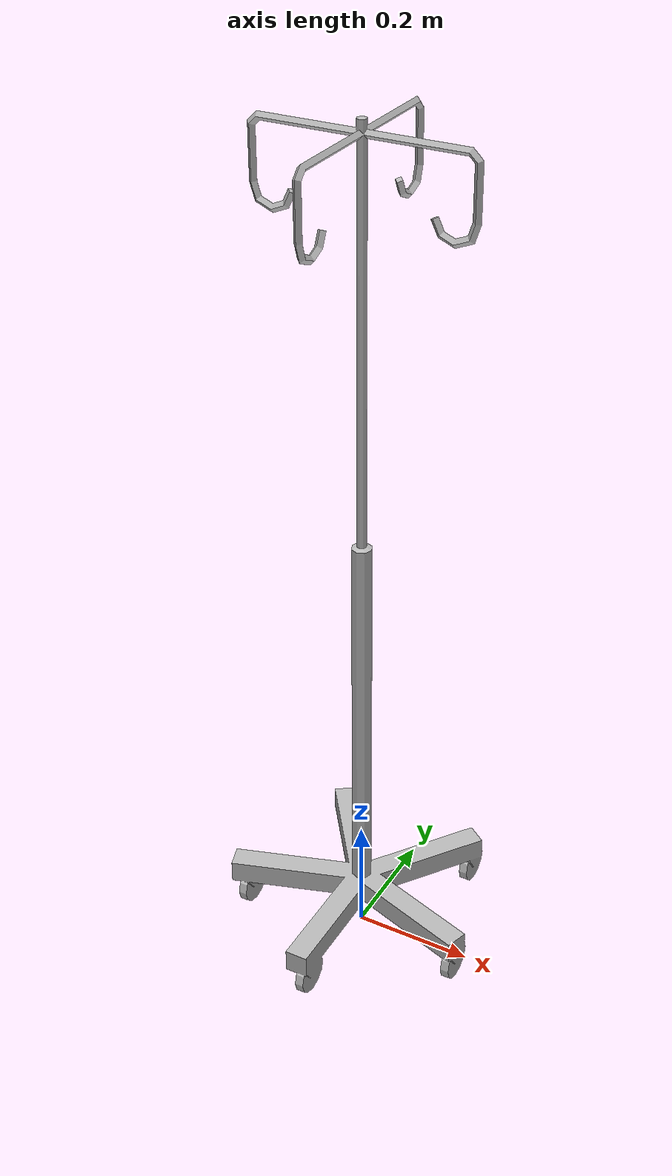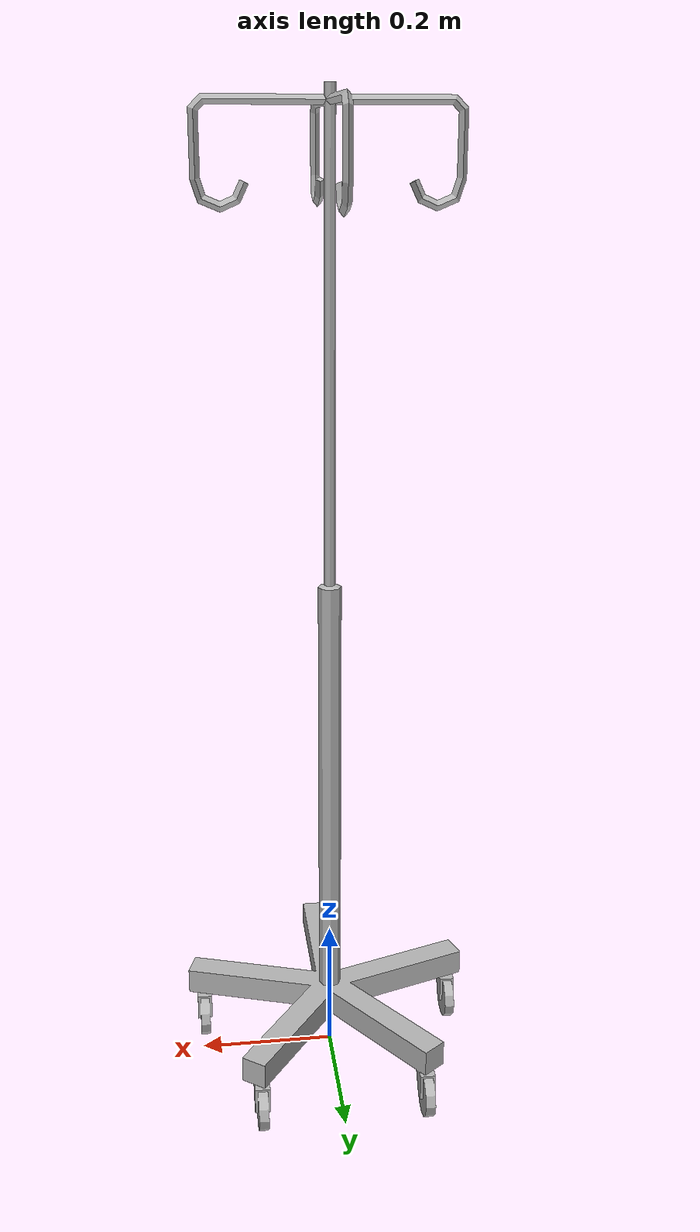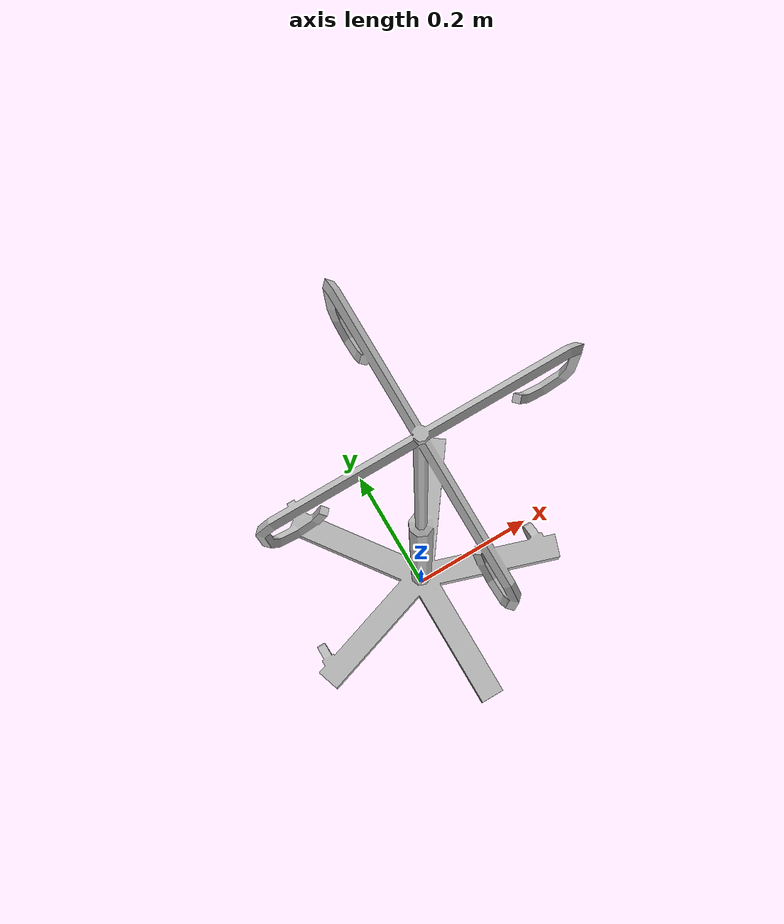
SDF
<?xml version="1.0"?>

<sdf version="1.6">
  <model name='IVStand'>
    <link name="body">
      <pose>0 0 0 0 0 0</pose>

      <visual name="visual">
        <geometry>
          <mesh>
            <uri>model://IVStand/meshes/IVStand.obj</uri>
            <scale>0.00817 0.00817 0.00817</scale>
          </mesh>
        </geometry>
      </visual>

      <collision name="collision">
        <geometry>
          <mesh>
            <uri>model://IVStand/meshes/IVStand.obj</uri>
            <scale>0.00817 0.00817 0.00817</scale>
          </mesh>
        </geometry>
      </collision>

    </link>
  </model>
</sdf>
